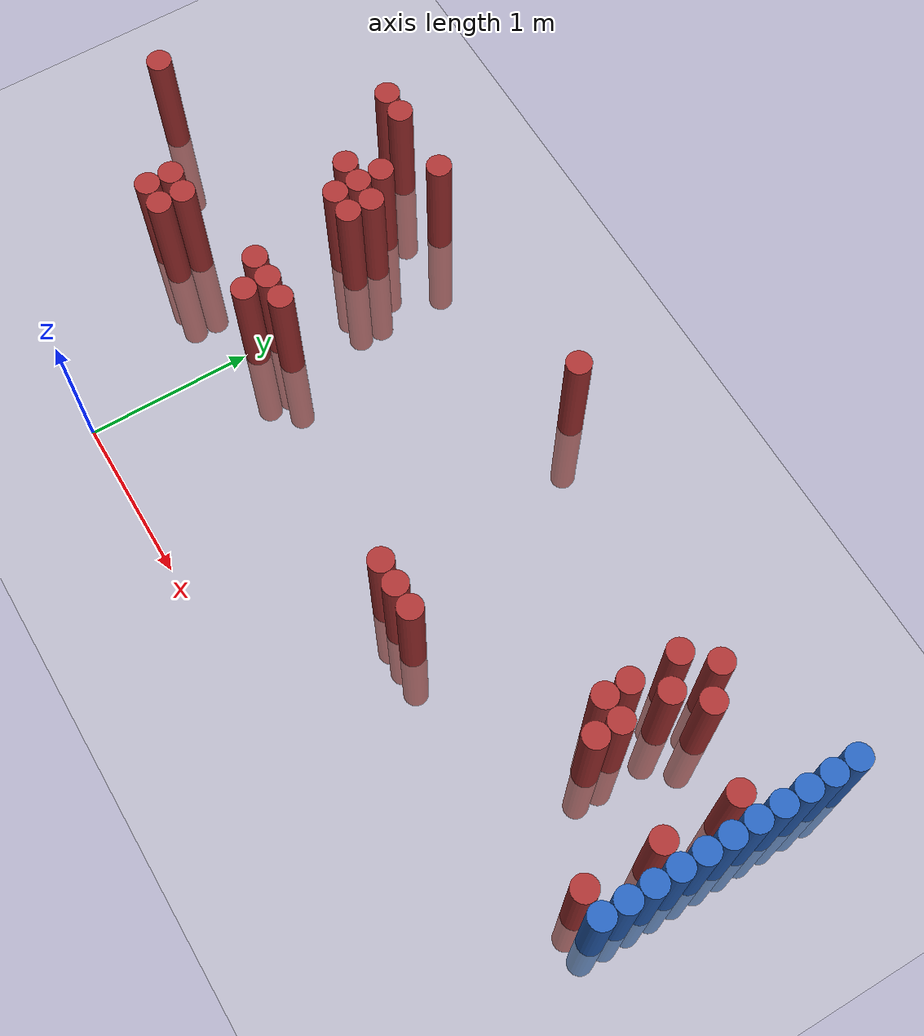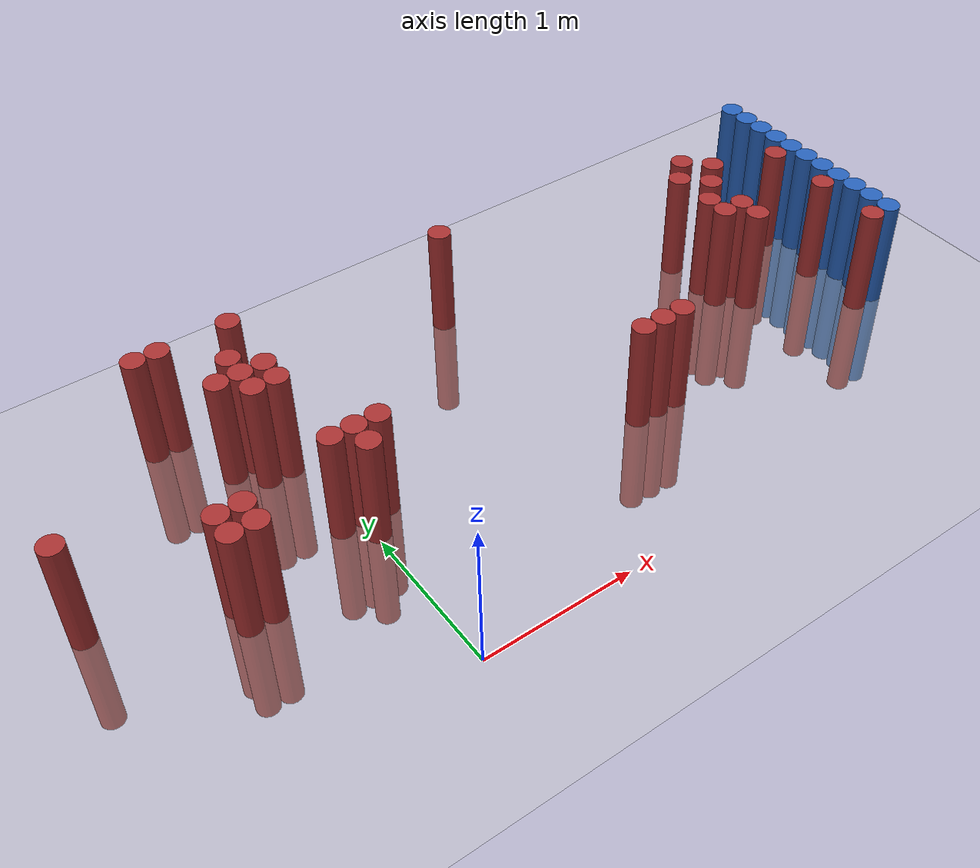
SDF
<sdf version="1.6">
 <world name="default">
  <model name="ground_plane">
   <static>1</static>
   <link name="link">
    <collision name="collision">
     <geometry><plane><normal>0 0 1</normal><size>100 100</size></plane></geometry>
     <surface><friction><ode><mu>100</mu><mu2>50</mu2></ode></friction></surface>
    </collision>
    <visual name="visual">
     <cast_shadows>0</cast_shadows>
     <geometry><plane><normal>0 0 1</normal><size>100 100</size></plane></geometry>
     <material>
      <script><uri>file://media/materials/scripts/gazebo.material</uri><name>Gazebo/Grey</name></script>
     </material>
    </visual>
   </link>
  </model>
  <model name="unit_cylinder_128">
   <static>1</static>
   <pose>3.925000 1.075000 0.000000 0.000000 0.000000 0.000000</pose>
   <link name="link">
    <inertial>
     <mass>1</mass>
     <inertia><ixx>0.145833</ixx><ixy>0</ixy><ixz>0</ixz><iyy>0.145833</iyy><iyz>0</iyz><izz>0.125</izz></inertia>
    </inertial>
    <collision name="collision">
     <geometry><cylinder><radius>0.075000</radius><length>1.5</length></cylinder></geometry>
    </collision>
    <visual name="visual">
     <geometry><cylinder><radius>0.075000</radius><length>1.5</length></cylinder></geometry>
     <material>
      <ambient>0.152000 0.379000 0.720000 1</ambient>
      <diffuse>0.152000 0.379000 0.720000 1</diffuse>
     </material>
     <material>
      <script><name>Gazebo/Grey</name><uri>file://media/materials/scripts/gazebo.material</uri></script>
     </material>
    </visual>
   </link>
  </model>
  <model name="unit_cylinder_130">
   <static>1</static>
   <pose>3.925000 1.225000 0.000000 0.000000 0.000000 0.000000</pose>
   <link name="link">
    <inertial>
     <mass>1</mass>
     <inertia><ixx>0.145833</ixx><ixy>0</ixy><ixz>0</ixz><iyy>0.145833</iyy><iyz>0</iyz><izz>0.125</izz></inertia>
    </inertial>
    <collision name="collision">
     <geometry><cylinder><radius>0.075000</radius><length>1.5</length></cylinder></geometry>
    </collision>
    <visual name="visual">
     <geometry><cylinder><radius>0.075000</radius><length>1.5</length></cylinder></geometry>
     <material>
      <ambient>0.152000 0.379000 0.720000 1</ambient>
      <diffuse>0.152000 0.379000 0.720000 1</diffuse>
     </material>
     <material>
      <script><name>Gazebo/Grey</name><uri>file://media/materials/scripts/gazebo.material</uri></script>
     </material>
    </visual>
   </link>
  </model>
  <model name="unit_cylinder_132">
   <static>1</static>
   <pose>3.925000 1.375000 0.000000 0.000000 0.000000 0.000000</pose>
   <link name="link">
    <inertial>
     <mass>1</mass>
     <inertia><ixx>0.145833</ixx><ixy>0</ixy><ixz>0</ixz><iyy>0.145833</iyy><iyz>0</iyz><izz>0.125</izz></inertia>
    </inertial>
    <collision name="collision">
     <geometry><cylinder><radius>0.075000</radius><length>1.5</length></cylinder></geometry>
    </collision>
    <visual name="visual">
     <geometry><cylinder><radius>0.075000</radius><length>1.5</length></cylinder></geometry>
     <material>
      <ambient>0.152000 0.379000 0.720000 1</ambient>
      <diffuse>0.152000 0.379000 0.720000 1</diffuse>
     </material>
     <material>
      <script><name>Gazebo/Grey</name><uri>file://media/materials/scripts/gazebo.material</uri></script>
     </material>
    </visual>
   </link>
  </model>
  <model name="unit_cylinder_134">
   <static>1</static>
   <pose>3.925000 1.525000 0.000000 0.000000 0.000000 0.000000</pose>
   <link name="link">
    <inertial>
     <mass>1</mass>
     <inertia><ixx>0.145833</ixx><ixy>0</ixy><ixz>0</ixz><iyy>0.145833</iyy><iyz>0</iyz><izz>0.125</izz></inertia>
    </inertial>
    <collision name="collision">
     <geometry><cylinder><radius>0.075000</radius><length>1.5</length></cylinder></geometry>
    </collision>
    <visual name="visual">
     <geometry><cylinder><radius>0.075000</radius><length>1.5</length></cylinder></geometry>
     <material>
      <ambient>0.152000 0.379000 0.720000 1</ambient>
      <diffuse>0.152000 0.379000 0.720000 1</diffuse>
     </material>
     <material>
      <script><name>Gazebo/Grey</name><uri>file://media/materials/scripts/gazebo.material</uri></script>
     </material>
    </visual>
   </link>
  </model>
  <model name="unit_cylinder_136">
   <static>1</static>
   <pose>3.925000 1.675000 0.000000 0.000000 0.000000 0.000000</pose>
   <link name="link">
    <inertial>
     <mass>1</mass>
     <inertia><ixx>0.145833</ixx><ixy>0</ixy><ixz>0</ixz><iyy>0.145833</iyy><iyz>0</iyz><izz>0.125</izz></inertia>
    </inertial>
    <collision name="collision">
     <geometry><cylinder><radius>0.075000</radius><length>1.5</length></cylinder></geometry>
    </collision>
    <visual name="visual">
     <geometry><cylinder><radius>0.075000</radius><length>1.5</length></cylinder></geometry>
     <material>
      <ambient>0.152000 0.379000 0.720000 1</ambient>
      <diffuse>0.152000 0.379000 0.720000 1</diffuse>
     </material>
     <material>
      <script><name>Gazebo/Grey</name><uri>file://media/materials/scripts/gazebo.material</uri></script>
     </material>
    </visual>
   </link>
  </model>
  <model name="unit_cylinder_138">
   <static>1</static>
   <pose>3.925000 1.825000 0.000000 0.000000 0.000000 0.000000</pose>
   <link name="link">
    <inertial>
     <mass>1</mass>
     <inertia><ixx>0.145833</ixx><ixy>0</ixy><ixz>0</ixz><iyy>0.145833</iyy><iyz>0</iyz><izz>0.125</izz></inertia>
    </inertial>
    <collision name="collision">
     <geometry><cylinder><radius>0.075000</radius><length>1.5</length></cylinder></geometry>
    </collision>
    <visual name="visual">
     <geometry><cylinder><radius>0.075000</radius><length>1.5</length></cylinder></geometry>
     <material>
      <ambient>0.152000 0.379000 0.720000 1</ambient>
      <diffuse>0.152000 0.379000 0.720000 1</diffuse>
     </material>
     <material>
      <script><name>Gazebo/Grey</name><uri>file://media/materials/scripts/gazebo.material</uri></script>
     </material>
    </visual>
   </link>
  </model>
  <model name="unit_cylinder_140">
   <static>1</static>
   <pose>3.925000 1.975000 0.000000 0.000000 0.000000 0.000000</pose>
   <link name="link">
    <inertial>
     <mass>1</mass>
     <inertia><ixx>0.145833</ixx><ixy>0</ixy><ixz>0</ixz><iyy>0.145833</iyy><iyz>0</iyz><izz>0.125</izz></inertia>
    </inertial>
    <collision name="collision">
     <geometry><cylinder><radius>0.075000</radius><length>1.5</length></cylinder></geometry>
    </collision>
    <visual name="visual">
     <geometry><cylinder><radius>0.075000</radius><length>1.5</length></cylinder></geometry>
     <material>
      <ambient>0.152000 0.379000 0.720000 1</ambient>
      <diffuse>0.152000 0.379000 0.720000 1</diffuse>
     </material>
     <material>
      <script><name>Gazebo/Grey</name><uri>file://media/materials/scripts/gazebo.material</uri></script>
     </material>
    </visual>
   </link>
  </model>
  <model name="unit_cylinder_142">
   <static>1</static>
   <pose>3.925000 2.125000 0.000000 0.000000 0.000000 0.000000</pose>
   <link name="link">
    <inertial>
     <mass>1</mass>
     <inertia><ixx>0.145833</ixx><ixy>0</ixy><ixz>0</ixz><iyy>0.145833</iyy><iyz>0</iyz><izz>0.125</izz></inertia>
    </inertial>
    <collision name="collision">
     <geometry><cylinder><radius>0.075000</radius><length>1.5</length></cylinder></geometry>
    </collision>
    <visual name="visual">
     <geometry><cylinder><radius>0.075000</radius><length>1.5</length></cylinder></geometry>
     <material>
      <ambient>0.152000 0.379000 0.720000 1</ambient>
      <diffuse>0.152000 0.379000 0.720000 1</diffuse>
     </material>
     <material>
      <script><name>Gazebo/Grey</name><uri>file://media/materials/scripts/gazebo.material</uri></script>
     </material>
    </visual>
   </link>
  </model>
  <model name="unit_cylinder_144">
   <static>1</static>
   <pose>3.925000 2.275000 0.000000 0.000000 0.000000 0.000000</pose>
   <link name="link">
    <inertial>
     <mass>1</mass>
     <inertia><ixx>0.145833</ixx><ixy>0</ixy><ixz>0</ixz><iyy>0.145833</iyy><iyz>0</iyz><izz>0.125</izz></inertia>
    </inertial>
    <collision name="collision">
     <geometry><cylinder><radius>0.075000</radius><length>1.5</length></cylinder></geometry>
    </collision>
    <visual name="visual">
     <geometry><cylinder><radius>0.075000</radius><length>1.5</length></cylinder></geometry>
     <material>
      <ambient>0.152000 0.379000 0.720000 1</ambient>
      <diffuse>0.152000 0.379000 0.720000 1</diffuse>
     </material>
     <material>
      <script><name>Gazebo/Grey</name><uri>file://media/materials/scripts/gazebo.material</uri></script>
     </material>
    </visual>
   </link>
  </model>
  <model name="unit_cylinder_146">
   <static>1</static>
   <pose>3.925000 2.425000 0.000000 0.000000 0.000000 0.000000</pose>
   <link name="link">
    <inertial>
     <mass>1</mass>
     <inertia><ixx>0.145833</ixx><ixy>0</ixy><ixz>0</ixz><iyy>0.145833</iyy><iyz>0</iyz><izz>0.125</izz></inertia>
    </inertial>
    <collision name="collision">
     <geometry><cylinder><radius>0.075000</radius><length>1.5</length></cylinder></geometry>
    </collision>
    <visual name="visual">
     <geometry><cylinder><radius>0.075000</radius><length>1.5</length></cylinder></geometry>
     <material>
      <ambient>0.152000 0.379000 0.720000 1</ambient>
      <diffuse>0.152000 0.379000 0.720000 1</diffuse>
     </material>
     <material>
      <script><name>Gazebo/Grey</name><uri>file://media/materials/scripts/gazebo.material</uri></script>
     </material>
    </visual>
   </link>
  </model>
  <model name="unit_cylinder_337">
   <static>1</static>
   <pose>-1.625000 1.375000 0.000000 0.000000 0.000000 0.000000</pose>
   <link name="link">
    <inertial>
     <mass>1</mass>
     <inertia><ixx>0.145833</ixx><ixy>0</ixy><ixz>0</ixz><iyy>0.145833</iyy><iyz>0</iyz><izz>0.125</izz></inertia>
    </inertial>
    <collision name="collision">
     <geometry><cylinder><radius>0.075000</radius><length>1.5</length></cylinder></geometry>
    </collision>
    <visual name="visual">
     <geometry><cylinder><radius>0.075000</radius><length>1.5</length></cylinder></geometry>
     <material>
      <ambient>0.648000 0.192000 0.192000 1</ambient>
      <diffuse>0.648000 0.192000 0.192000 1</diffuse>
     </material>
     <material>
      <script><name>Gazebo/Grey</name><uri>file://media/materials/scripts/gazebo.material</uri></script>
     </material>
    </visual>
   </link>
  </model>
  <model name="unit_cylinder_364">
   <static>1</static>
   <pose>-0.875000 0.925000 0.000000 0.000000 0.000000 0.000000</pose>
   <link name="link">
    <inertial>
     <mass>1</mass>
     <inertia><ixx>0.145833</ixx><ixy>0</ixy><ixz>0</ixz><iyy>0.145833</iyy><iyz>0</iyz><izz>0.125</izz></inertia>
    </inertial>
    <collision name="collision">
     <geometry><cylinder><radius>0.075000</radius><length>1.5</length></cylinder></geometry>
    </collision>
    <visual name="visual">
     <geometry><cylinder><radius>0.075000</radius><length>1.5</length></cylinder></geometry>
     <material>
      <ambient>0.648000 0.192000 0.192000 1</ambient>
      <diffuse>0.648000 0.192000 0.192000 1</diffuse>
     </material>
     <material>
      <script><name>Gazebo/Grey</name><uri>file://media/materials/scripts/gazebo.material</uri></script>
     </material>
    </visual>
   </link>
  </model>
  <model name="unit_cylinder_365">
   <static>1</static>
   <pose>-0.875000 1.075000 0.000000 0.000000 0.000000 0.000000</pose>
   <link name="link">
    <inertial>
     <mass>1</mass>
     <inertia><ixx>0.145833</ixx><ixy>0</ixy><ixz>0</ixz><iyy>0.145833</iyy><iyz>0</iyz><izz>0.125</izz></inertia>
    </inertial>
    <collision name="collision">
     <geometry><cylinder><radius>0.075000</radius><length>1.5</length></cylinder></geometry>
    </collision>
    <visual name="visual">
     <geometry><cylinder><radius>0.075000</radius><length>1.5</length></cylinder></geometry>
     <material>
      <ambient>0.648000 0.192000 0.192000 1</ambient>
      <diffuse>0.648000 0.192000 0.192000 1</diffuse>
     </material>
     <material>
      <script><name>Gazebo/Grey</name><uri>file://media/materials/scripts/gazebo.material</uri></script>
     </material>
    </visual>
   </link>
  </model>
  <model name="unit_cylinder_367">
   <static>1</static>
   <pose>-0.725000 0.925000 0.000000 0.000000 0.000000 0.000000</pose>
   <link name="link">
    <inertial>
     <mass>1</mass>
     <inertia><ixx>0.145833</ixx><ixy>0</ixy><ixz>0</ixz><iyy>0.145833</iyy><iyz>0</iyz><izz>0.125</izz></inertia>
    </inertial>
    <collision name="collision">
     <geometry><cylinder><radius>0.075000</radius><length>1.5</length></cylinder></geometry>
    </collision>
    <visual name="visual">
     <geometry><cylinder><radius>0.075000</radius><length>1.5</length></cylinder></geometry>
     <material>
      <ambient>0.648000 0.192000 0.192000 1</ambient>
      <diffuse>0.648000 0.192000 0.192000 1</diffuse>
     </material>
     <material>
      <script><name>Gazebo/Grey</name><uri>file://media/materials/scripts/gazebo.material</uri></script>
     </material>
    </visual>
   </link>
  </model>
  <model name="unit_cylinder_368">
   <static>1</static>
   <pose>-0.725000 1.075000 0.000000 0.000000 0.000000 0.000000</pose>
   <link name="link">
    <inertial>
     <mass>1</mass>
     <inertia><ixx>0.145833</ixx><ixy>0</ixy><ixz>0</ixz><iyy>0.145833</iyy><iyz>0</iyz><izz>0.125</izz></inertia>
    </inertial>
    <collision name="collision">
     <geometry><cylinder><radius>0.075000</radius><length>1.5</length></cylinder></geometry>
    </collision>
    <visual name="visual">
     <geometry><cylinder><radius>0.075000</radius><length>1.5</length></cylinder></geometry>
     <material>
      <ambient>0.648000 0.192000 0.192000 1</ambient>
      <diffuse>0.648000 0.192000 0.192000 1</diffuse>
     </material>
     <material>
      <script><name>Gazebo/Grey</name><uri>file://media/materials/scripts/gazebo.material</uri></script>
     </material>
    </visual>
   </link>
  </model>
  <model name="unit_cylinder_369">
   <static>1</static>
   <pose>-0.725000 2.425000 0.000000 0.000000 0.000000 0.000000</pose>
   <link name="link">
    <inertial>
     <mass>1</mass>
     <inertia><ixx>0.145833</ixx><ixy>0</ixy><ixz>0</ixz><iyy>0.145833</iyy><iyz>0</iyz><izz>0.125</izz></inertia>
    </inertial>
    <collision name="collision">
     <geometry><cylinder><radius>0.075000</radius><length>1.5</length></cylinder></geometry>
    </collision>
    <visual name="visual">
     <geometry><cylinder><radius>0.075000</radius><length>1.5</length></cylinder></geometry>
     <material>
      <ambient>0.648000 0.192000 0.192000 1</ambient>
      <diffuse>0.648000 0.192000 0.192000 1</diffuse>
     </material>
     <material>
      <script><name>Gazebo/Grey</name><uri>file://media/materials/scripts/gazebo.material</uri></script>
     </material>
    </visual>
   </link>
  </model>
  <model name="unit_cylinder_373">
   <static>1</static>
   <pose>-0.575000 2.425000 0.000000 0.000000 0.000000 0.000000</pose>
   <link name="link">
    <inertial>
     <mass>1</mass>
     <inertia><ixx>0.145833</ixx><ixy>0</ixy><ixz>0</ixz><iyy>0.145833</iyy><iyz>0</iyz><izz>0.125</izz></inertia>
    </inertial>
    <collision name="collision">
     <geometry><cylinder><radius>0.075000</radius><length>1.5</length></cylinder></geometry>
    </collision>
    <visual name="visual">
     <geometry><cylinder><radius>0.075000</radius><length>1.5</length></cylinder></geometry>
     <material>
      <ambient>0.648000 0.192000 0.192000 1</ambient>
      <diffuse>0.648000 0.192000 0.192000 1</diffuse>
     </material>
     <material>
      <script><name>Gazebo/Grey</name><uri>file://media/materials/scripts/gazebo.material</uri></script>
     </material>
    </visual>
   </link>
  </model>
  <model name="unit_cylinder_375">
   <static>1</static>
   <pose>-0.425000 1.975000 0.000000 0.000000 0.000000 0.000000</pose>
   <link name="link">
    <inertial>
     <mass>1</mass>
     <inertia><ixx>0.145833</ixx><ixy>0</ixy><ixz>0</ixz><iyy>0.145833</iyy><iyz>0</iyz><izz>0.125</izz></inertia>
    </inertial>
    <collision name="collision">
     <geometry><cylinder><radius>0.075000</radius><length>1.5</length></cylinder></geometry>
    </collision>
    <visual name="visual">
     <geometry><cylinder><radius>0.075000</radius><length>1.5</length></cylinder></geometry>
     <material>
      <ambient>0.648000 0.192000 0.192000 1</ambient>
      <diffuse>0.648000 0.192000 0.192000 1</diffuse>
     </material>
     <material>
      <script><name>Gazebo/Grey</name><uri>file://media/materials/scripts/gazebo.material</uri></script>
     </material>
    </visual>
   </link>
  </model>
  <model name="unit_cylinder_378">
   <static>1</static>
   <pose>-0.275000 1.825000 0.000000 0.000000 0.000000 0.000000</pose>
   <link name="link">
    <inertial>
     <mass>1</mass>
     <inertia><ixx>0.145833</ixx><ixy>0</ixy><ixz>0</ixz><iyy>0.145833</iyy><iyz>0</iyz><izz>0.125</izz></inertia>
    </inertial>
    <collision name="collision">
     <geometry><cylinder><radius>0.075000</radius><length>1.5</length></cylinder></geometry>
    </collision>
    <visual name="visual">
     <geometry><cylinder><radius>0.075000</radius><length>1.5</length></cylinder></geometry>
     <material>
      <ambient>0.648000 0.192000 0.192000 1</ambient>
      <diffuse>0.648000 0.192000 0.192000 1</diffuse>
     </material>
     <material>
      <script><name>Gazebo/Grey</name><uri>file://media/materials/scripts/gazebo.material</uri></script>
     </material>
    </visual>
   </link>
  </model>
  <model name="unit_cylinder_379">
   <static>1</static>
   <pose>-0.275000 1.975000 0.000000 0.000000 0.000000 0.000000</pose>
   <link name="link">
    <inertial>
     <mass>1</mass>
     <inertia><ixx>0.145833</ixx><ixy>0</ixy><ixz>0</ixz><iyy>0.145833</iyy><iyz>0</iyz><izz>0.125</izz></inertia>
    </inertial>
    <collision name="collision">
     <geometry><cylinder><radius>0.075000</radius><length>1.5</length></cylinder></geometry>
    </collision>
    <visual name="visual">
     <geometry><cylinder><radius>0.075000</radius><length>1.5</length></cylinder></geometry>
     <material>
      <ambient>0.648000 0.192000 0.192000 1</ambient>
      <diffuse>0.648000 0.192000 0.192000 1</diffuse>
     </material>
     <material>
      <script><name>Gazebo/Grey</name><uri>file://media/materials/scripts/gazebo.material</uri></script>
     </material>
    </visual>
   </link>
  </model>
  <model name="unit_cylinder_380">
   <static>1</static>
   <pose>-0.275000 2.125000 0.000000 0.000000 0.000000 0.000000</pose>
   <link name="link">
    <inertial>
     <mass>1</mass>
     <inertia><ixx>0.145833</ixx><ixy>0</ixy><ixz>0</ixz><iyy>0.145833</iyy><iyz>0</iyz><izz>0.125</izz></inertia>
    </inertial>
    <collision name="collision">
     <geometry><cylinder><radius>0.075000</radius><length>1.5</length></cylinder></geometry>
    </collision>
    <visual name="visual">
     <geometry><cylinder><radius>0.075000</radius><length>1.5</length></cylinder></geometry>
     <material>
      <ambient>0.648000 0.192000 0.192000 1</ambient>
      <diffuse>0.648000 0.192000 0.192000 1</diffuse>
     </material>
     <material>
      <script><name>Gazebo/Grey</name><uri>file://media/materials/scripts/gazebo.material</uri></script>
     </material>
    </visual>
   </link>
  </model>
  <model name="unit_cylinder_382">
   <static>1</static>
   <pose>-0.125000 1.225000 0.000000 0.000000 0.000000 0.000000</pose>
   <link name="link">
    <inertial>
     <mass>1</mass>
     <inertia><ixx>0.145833</ixx><ixy>0</ixy><ixz>0</ixz><iyy>0.145833</iyy><iyz>0</iyz><izz>0.125</izz></inertia>
    </inertial>
    <collision name="collision">
     <geometry><cylinder><radius>0.075000</radius><length>1.5</length></cylinder></geometry>
    </collision>
    <visual name="visual">
     <geometry><cylinder><radius>0.075000</radius><length>1.5</length></cylinder></geometry>
     <material>
      <ambient>0.648000 0.192000 0.192000 1</ambient>
      <diffuse>0.648000 0.192000 0.192000 1</diffuse>
     </material>
     <material>
      <script><name>Gazebo/Grey</name><uri>file://media/materials/scripts/gazebo.material</uri></script>
     </material>
    </visual>
   </link>
  </model>
  <model name="unit_cylinder_383">
   <static>1</static>
   <pose>-0.125000 1.825000 0.000000 0.000000 0.000000 0.000000</pose>
   <link name="link">
    <inertial>
     <mass>1</mass>
     <inertia><ixx>0.145833</ixx><ixy>0</ixy><ixz>0</ixz><iyy>0.145833</iyy><iyz>0</iyz><izz>0.125</izz></inertia>
    </inertial>
    <collision name="collision">
     <geometry><cylinder><radius>0.075000</radius><length>1.5</length></cylinder></geometry>
    </collision>
    <visual name="visual">
     <geometry><cylinder><radius>0.075000</radius><length>1.5</length></cylinder></geometry>
     <material>
      <ambient>0.648000 0.192000 0.192000 1</ambient>
      <diffuse>0.648000 0.192000 0.192000 1</diffuse>
     </material>
     <material>
      <script><name>Gazebo/Grey</name><uri>file://media/materials/scripts/gazebo.material</uri></script>
     </material>
    </visual>
   </link>
  </model>
  <model name="unit_cylinder_384">
   <static>1</static>
   <pose>-0.125000 1.975000 0.000000 0.000000 0.000000 0.000000</pose>
   <link name="link">
    <inertial>
     <mass>1</mass>
     <inertia><ixx>0.145833</ixx><ixy>0</ixy><ixz>0</ixz><iyy>0.145833</iyy><iyz>0</iyz><izz>0.125</izz></inertia>
    </inertial>
    <collision name="collision">
     <geometry><cylinder><radius>0.075000</radius><length>1.5</length></cylinder></geometry>
    </collision>
    <visual name="visual">
     <geometry><cylinder><radius>0.075000</radius><length>1.5</length></cylinder></geometry>
     <material>
      <ambient>0.648000 0.192000 0.192000 1</ambient>
      <diffuse>0.648000 0.192000 0.192000 1</diffuse>
     </material>
     <material>
      <script><name>Gazebo/Grey</name><uri>file://media/materials/scripts/gazebo.material</uri></script>
     </material>
    </visual>
   </link>
  </model>
  <model name="unit_cylinder_385">
   <static>1</static>
   <pose>-0.125000 2.425000 0.000000 0.000000 0.000000 0.000000</pose>
   <link name="link">
    <inertial>
     <mass>1</mass>
     <inertia><ixx>0.145833</ixx><ixy>0</ixy><ixz>0</ixz><iyy>0.145833</iyy><iyz>0</iyz><izz>0.125</izz></inertia>
    </inertial>
    <collision name="collision">
     <geometry><cylinder><radius>0.075000</radius><length>1.5</length></cylinder></geometry>
    </collision>
    <visual name="visual">
     <geometry><cylinder><radius>0.075000</radius><length>1.5</length></cylinder></geometry>
     <material>
      <ambient>0.648000 0.192000 0.192000 1</ambient>
      <diffuse>0.648000 0.192000 0.192000 1</diffuse>
     </material>
     <material>
      <script><name>Gazebo/Grey</name><uri>file://media/materials/scripts/gazebo.material</uri></script>
     </material>
    </visual>
   </link>
  </model>
  <model name="unit_cylinder_387">
   <static>1</static>
   <pose>0.025000 1.075000 0.000000 0.000000 0.000000 0.000000</pose>
   <link name="link">
    <inertial>
     <mass>1</mass>
     <inertia><ixx>0.145833</ixx><ixy>0</ixy><ixz>0</ixz><iyy>0.145833</iyy><iyz>0</iyz><izz>0.125</izz></inertia>
    </inertial>
    <collision name="collision">
     <geometry><cylinder><radius>0.075000</radius><length>1.5</length></cylinder></geometry>
    </collision>
    <visual name="visual">
     <geometry><cylinder><radius>0.075000</radius><length>1.5</length></cylinder></geometry>
     <material>
      <ambient>0.648000 0.192000 0.192000 1</ambient>
      <diffuse>0.648000 0.192000 0.192000 1</diffuse>
     </material>
     <material>
      <script><name>Gazebo/Grey</name><uri>file://media/materials/scripts/gazebo.material</uri></script>
     </material>
    </visual>
   </link>
  </model>
  <model name="unit_cylinder_388">
   <static>1</static>
   <pose>0.025000 1.225000 0.000000 0.000000 0.000000 0.000000</pose>
   <link name="link">
    <inertial>
     <mass>1</mass>
     <inertia><ixx>0.145833</ixx><ixy>0</ixy><ixz>0</ixz><iyy>0.145833</iyy><iyz>0</iyz><izz>0.125</izz></inertia>
    </inertial>
    <collision name="collision">
     <geometry><cylinder><radius>0.075000</radius><length>1.5</length></cylinder></geometry>
    </collision>
    <visual name="visual">
     <geometry><cylinder><radius>0.075000</radius><length>1.5</length></cylinder></geometry>
     <material>
      <ambient>0.648000 0.192000 0.192000 1</ambient>
      <diffuse>0.648000 0.192000 0.192000 1</diffuse>
     </material>
     <material>
      <script><name>Gazebo/Grey</name><uri>file://media/materials/scripts/gazebo.material</uri></script>
     </material>
    </visual>
   </link>
  </model>
  <model name="unit_cylinder_391">
   <static>1</static>
   <pose>0.175000 1.225000 0.000000 0.000000 0.000000 0.000000</pose>
   <link name="link">
    <inertial>
     <mass>1</mass>
     <inertia><ixx>0.145833</ixx><ixy>0</ixy><ixz>0</ixz><iyy>0.145833</iyy><iyz>0</iyz><izz>0.125</izz></inertia>
    </inertial>
    <collision name="collision">
     <geometry><cylinder><radius>0.075000</radius><length>1.5</length></cylinder></geometry>
    </collision>
    <visual name="visual">
     <geometry><cylinder><radius>0.075000</radius><length>1.5</length></cylinder></geometry>
     <material>
      <ambient>0.648000 0.192000 0.192000 1</ambient>
      <diffuse>0.648000 0.192000 0.192000 1</diffuse>
     </material>
     <material>
      <script><name>Gazebo/Grey</name><uri>file://media/materials/scripts/gazebo.material</uri></script>
     </material>
    </visual>
   </link>
  </model>
  <model name="unit_cylinder_399">
   <static>1</static>
   <pose>1.375000 2.425000 0.000000 0.000000 0.000000 0.000000</pose>
   <link name="link">
    <inertial>
     <mass>1</mass>
     <inertia><ixx>0.145833</ixx><ixy>0</ixy><ixz>0</ixz><iyy>0.145833</iyy><iyz>0</iyz><izz>0.125</izz></inertia>
    </inertial>
    <collision name="collision">
     <geometry><cylinder><radius>0.075000</radius><length>1.5</length></cylinder></geometry>
    </collision>
    <visual name="visual">
     <geometry><cylinder><radius>0.075000</radius><length>1.5</length></cylinder></geometry>
     <material>
      <ambient>0.648000 0.192000 0.192000 1</ambient>
      <diffuse>0.648000 0.192000 0.192000 1</diffuse>
     </material>
     <material>
      <script><name>Gazebo/Grey</name><uri>file://media/materials/scripts/gazebo.material</uri></script>
     </material>
    </visual>
   </link>
  </model>
  <model name="unit_cylinder_408">
   <static>1</static>
   <pose>1.825000 0.925000 0.000000 0.000000 0.000000 0.000000</pose>
   <link name="link">
    <inertial>
     <mass>1</mass>
     <inertia><ixx>0.145833</ixx><ixy>0</ixy><ixz>0</ixz><iyy>0.145833</iyy><iyz>0</iyz><izz>0.125</izz></inertia>
    </inertial>
    <collision name="collision">
     <geometry><cylinder><radius>0.075000</radius><length>1.5</length></cylinder></geometry>
    </collision>
    <visual name="visual">
     <geometry><cylinder><radius>0.075000</radius><length>1.5</length></cylinder></geometry>
     <material>
      <ambient>0.648000 0.192000 0.192000 1</ambient>
      <diffuse>0.648000 0.192000 0.192000 1</diffuse>
     </material>
     <material>
      <script><name>Gazebo/Grey</name><uri>file://media/materials/scripts/gazebo.material</uri></script>
     </material>
    </visual>
   </link>
  </model>
  <model name="unit_cylinder_411">
   <static>1</static>
   <pose>1.975000 0.925000 0.000000 0.000000 0.000000 0.000000</pose>
   <link name="link">
    <inertial>
     <mass>1</mass>
     <inertia><ixx>0.145833</ixx><ixy>0</ixy><ixz>0</ixz><iyy>0.145833</iyy><iyz>0</iyz><izz>0.125</izz></inertia>
    </inertial>
    <collision name="collision">
     <geometry><cylinder><radius>0.075000</radius><length>1.5</length></cylinder></geometry>
    </collision>
    <visual name="visual">
     <geometry><cylinder><radius>0.075000</radius><length>1.5</length></cylinder></geometry>
     <material>
      <ambient>0.648000 0.192000 0.192000 1</ambient>
      <diffuse>0.648000 0.192000 0.192000 1</diffuse>
     </material>
     <material>
      <script><name>Gazebo/Grey</name><uri>file://media/materials/scripts/gazebo.material</uri></script>
     </material>
    </visual>
   </link>
  </model>
  <model name="unit_cylinder_416">
   <static>1</static>
   <pose>2.125000 0.925000 0.000000 0.000000 0.000000 0.000000</pose>
   <link name="link">
    <inertial>
     <mass>1</mass>
     <inertia><ixx>0.145833</ixx><ixy>0</ixy><ixz>0</ixz><iyy>0.145833</iyy><iyz>0</iyz><izz>0.125</izz></inertia>
    </inertial>
    <collision name="collision">
     <geometry><cylinder><radius>0.075000</radius><length>1.5</length></cylinder></geometry>
    </collision>
    <visual name="visual">
     <geometry><cylinder><radius>0.075000</radius><length>1.5</length></cylinder></geometry>
     <material>
      <ambient>0.648000 0.192000 0.192000 1</ambient>
      <diffuse>0.648000 0.192000 0.192000 1</diffuse>
     </material>
     <material>
      <script><name>Gazebo/Grey</name><uri>file://media/materials/scripts/gazebo.material</uri></script>
     </material>
    </visual>
   </link>
  </model>
  <model name="unit_cylinder_432">
   <static>1</static>
   <pose>3.025000 1.525000 0.000000 0.000000 0.000000 0.000000</pose>
   <link name="link">
    <inertial>
     <mass>1</mass>
     <inertia><ixx>0.145833</ixx><ixy>0</ixy><ixz>0</ixz><iyy>0.145833</iyy><iyz>0</iyz><izz>0.125</izz></inertia>
    </inertial>
    <collision name="collision">
     <geometry><cylinder><radius>0.075000</radius><length>1.5</length></cylinder></geometry>
    </collision>
    <visual name="visual">
     <geometry><cylinder><radius>0.075000</radius><length>1.5</length></cylinder></geometry>
     <material>
      <ambient>0.648000 0.192000 0.192000 1</ambient>
      <diffuse>0.648000 0.192000 0.192000 1</diffuse>
     </material>
     <material>
      <script><name>Gazebo/Grey</name><uri>file://media/materials/scripts/gazebo.material</uri></script>
     </material>
    </visual>
   </link>
  </model>
  <model name="unit_cylinder_433">
   <static>1</static>
   <pose>3.025000 1.675000 0.000000 0.000000 0.000000 0.000000</pose>
   <link name="link">
    <inertial>
     <mass>1</mass>
     <inertia><ixx>0.145833</ixx><ixy>0</ixy><ixz>0</ixz><iyy>0.145833</iyy><iyz>0</iyz><izz>0.125</izz></inertia>
    </inertial>
    <collision name="collision">
     <geometry><cylinder><radius>0.075000</radius><length>1.5</length></cylinder></geometry>
    </collision>
    <visual name="visual">
     <geometry><cylinder><radius>0.075000</radius><length>1.5</length></cylinder></geometry>
     <material>
      <ambient>0.648000 0.192000 0.192000 1</ambient>
      <diffuse>0.648000 0.192000 0.192000 1</diffuse>
     </material>
     <material>
      <script><name>Gazebo/Grey</name><uri>file://media/materials/scripts/gazebo.material</uri></script>
     </material>
    </visual>
   </link>
  </model>
  <model name="unit_cylinder_434">
   <static>1</static>
   <pose>3.025000 1.975000 0.000000 0.000000 0.000000 0.000000</pose>
   <link name="link">
    <inertial>
     <mass>1</mass>
     <inertia><ixx>0.145833</ixx><ixy>0</ixy><ixz>0</ixz><iyy>0.145833</iyy><iyz>0</iyz><izz>0.125</izz></inertia>
    </inertial>
    <collision name="collision">
     <geometry><cylinder><radius>0.075000</radius><length>1.5</length></cylinder></geometry>
    </collision>
    <visual name="visual">
     <geometry><cylinder><radius>0.075000</radius><length>1.5</length></cylinder></geometry>
     <material>
      <ambient>0.648000 0.192000 0.192000 1</ambient>
      <diffuse>0.648000 0.192000 0.192000 1</diffuse>
     </material>
     <material>
      <script><name>Gazebo/Grey</name><uri>file://media/materials/scripts/gazebo.material</uri></script>
     </material>
    </visual>
   </link>
  </model>
  <model name="unit_cylinder_441">
   <static>1</static>
   <pose>3.175000 1.375000 0.000000 0.000000 0.000000 0.000000</pose>
   <link name="link">
    <inertial>
     <mass>1</mass>
     <inertia><ixx>0.145833</ixx><ixy>0</ixy><ixz>0</ixz><iyy>0.145833</iyy><iyz>0</iyz><izz>0.125</izz></inertia>
    </inertial>
    <collision name="collision">
     <geometry><cylinder><radius>0.075000</radius><length>1.5</length></cylinder></geometry>
    </collision>
    <visual name="visual">
     <geometry><cylinder><radius>0.075000</radius><length>1.5</length></cylinder></geometry>
     <material>
      <ambient>0.648000 0.192000 0.192000 1</ambient>
      <diffuse>0.648000 0.192000 0.192000 1</diffuse>
     </material>
     <material>
      <script><name>Gazebo/Grey</name><uri>file://media/materials/scripts/gazebo.material</uri></script>
     </material>
    </visual>
   </link>
  </model>
  <model name="unit_cylinder_442">
   <static>1</static>
   <pose>3.175000 1.525000 0.000000 0.000000 0.000000 0.000000</pose>
   <link name="link">
    <inertial>
     <mass>1</mass>
     <inertia><ixx>0.145833</ixx><ixy>0</ixy><ixz>0</ixz><iyy>0.145833</iyy><iyz>0</iyz><izz>0.125</izz></inertia>
    </inertial>
    <collision name="collision">
     <geometry><cylinder><radius>0.075000</radius><length>1.5</length></cylinder></geometry>
    </collision>
    <visual name="visual">
     <geometry><cylinder><radius>0.075000</radius><length>1.5</length></cylinder></geometry>
     <material>
      <ambient>0.648000 0.192000 0.192000 1</ambient>
      <diffuse>0.648000 0.192000 0.192000 1</diffuse>
     </material>
     <material>
      <script><name>Gazebo/Grey</name><uri>file://media/materials/scripts/gazebo.material</uri></script>
     </material>
    </visual>
   </link>
  </model>
  <model name="unit_cylinder_443">
   <static>1</static>
   <pose>3.175000 1.825000 0.000000 0.000000 0.000000 0.000000</pose>
   <link name="link">
    <inertial>
     <mass>1</mass>
     <inertia><ixx>0.145833</ixx><ixy>0</ixy><ixz>0</ixz><iyy>0.145833</iyy><iyz>0</iyz><izz>0.125</izz></inertia>
    </inertial>
    <collision name="collision">
     <geometry><cylinder><radius>0.075000</radius><length>1.5</length></cylinder></geometry>
    </collision>
    <visual name="visual">
     <geometry><cylinder><radius>0.075000</radius><length>1.5</length></cylinder></geometry>
     <material>
      <ambient>0.648000 0.192000 0.192000 1</ambient>
      <diffuse>0.648000 0.192000 0.192000 1</diffuse>
     </material>
     <material>
      <script><name>Gazebo/Grey</name><uri>file://media/materials/scripts/gazebo.material</uri></script>
     </material>
    </visual>
   </link>
  </model>
  <model name="unit_cylinder_444">
   <static>1</static>
   <pose>3.175000 2.125000 0.000000 0.000000 0.000000 0.000000</pose>
   <link name="link">
    <inertial>
     <mass>1</mass>
     <inertia><ixx>0.145833</ixx><ixy>0</ixy><ixz>0</ixz><iyy>0.145833</iyy><iyz>0</iyz><izz>0.125</izz></inertia>
    </inertial>
    <collision name="collision">
     <geometry><cylinder><radius>0.075000</radius><length>1.5</length></cylinder></geometry>
    </collision>
    <visual name="visual">
     <geometry><cylinder><radius>0.075000</radius><length>1.5</length></cylinder></geometry>
     <material>
      <ambient>0.648000 0.192000 0.192000 1</ambient>
      <diffuse>0.648000 0.192000 0.192000 1</diffuse>
     </material>
     <material>
      <script><name>Gazebo/Grey</name><uri>file://media/materials/scripts/gazebo.material</uri></script>
     </material>
    </visual>
   </link>
  </model>
  <model name="unit_cylinder_452">
   <static>1</static>
   <pose>3.325000 1.975000 0.000000 0.000000 0.000000 0.000000</pose>
   <link name="link">
    <inertial>
     <mass>1</mass>
     <inertia><ixx>0.145833</ixx><ixy>0</ixy><ixz>0</ixz><iyy>0.145833</iyy><iyz>0</iyz><izz>0.125</izz></inertia>
    </inertial>
    <collision name="collision">
     <geometry><cylinder><radius>0.075000</radius><length>1.5</length></cylinder></geometry>
    </collision>
    <visual name="visual">
     <geometry><cylinder><radius>0.075000</radius><length>1.5</length></cylinder></geometry>
     <material>
      <ambient>0.648000 0.192000 0.192000 1</ambient>
      <diffuse>0.648000 0.192000 0.192000 1</diffuse>
     </material>
     <material>
      <script><name>Gazebo/Grey</name><uri>file://media/materials/scripts/gazebo.material</uri></script>
     </material>
    </visual>
   </link>
  </model>
  <model name="unit_cylinder_478">
   <static>1</static>
   <pose>3.775000 0.925000 0.000000 0.000000 0.000000 0.000000</pose>
   <link name="link">
    <inertial>
     <mass>1</mass>
     <inertia><ixx>0.145833</ixx><ixy>0</ixy><ixz>0</ixz><iyy>0.145833</iyy><iyz>0</iyz><izz>0.125</izz></inertia>
    </inertial>
    <collision name="collision">
     <geometry><cylinder><radius>0.075000</radius><length>1.5</length></cylinder></geometry>
    </collision>
    <visual name="visual">
     <geometry><cylinder><radius>0.075000</radius><length>1.5</length></cylinder></geometry>
     <material>
      <ambient>0.648000 0.192000 0.192000 1</ambient>
      <diffuse>0.648000 0.192000 0.192000 1</diffuse>
     </material>
     <material>
      <script><name>Gazebo/Grey</name><uri>file://media/materials/scripts/gazebo.material</uri></script>
     </material>
    </visual>
   </link>
  </model>
  <model name="unit_cylinder_479">
   <static>1</static>
   <pose>3.775000 1.375000 0.000000 0.000000 0.000000 0.000000</pose>
   <link name="link">
    <inertial>
     <mass>1</mass>
     <inertia><ixx>0.145833</ixx><ixy>0</ixy><ixz>0</ixz><iyy>0.145833</iyy><iyz>0</iyz><izz>0.125</izz></inertia>
    </inertial>
    <collision name="collision">
     <geometry><cylinder><radius>0.075000</radius><length>1.5</length></cylinder></geometry>
    </collision>
    <visual name="visual">
     <geometry><cylinder><radius>0.075000</radius><length>1.5</length></cylinder></geometry>
     <material>
      <ambient>0.648000 0.192000 0.192000 1</ambient>
      <diffuse>0.648000 0.192000 0.192000 1</diffuse>
     </material>
     <material>
      <script><name>Gazebo/Grey</name><uri>file://media/materials/scripts/gazebo.material</uri></script>
     </material>
    </visual>
   </link>
  </model>
  <model name="unit_cylinder_480">
   <static>1</static>
   <pose>3.775000 1.825000 0.000000 0.000000 0.000000 0.000000</pose>
   <link name="link">
    <inertial>
     <mass>1</mass>
     <inertia><ixx>0.145833</ixx><ixy>0</ixy><ixz>0</ixz><iyy>0.145833</iyy><iyz>0</iyz><izz>0.125</izz></inertia>
    </inertial>
    <collision name="collision">
     <geometry><cylinder><radius>0.075000</radius><length>1.5</length></cylinder></geometry>
    </collision>
    <visual name="visual">
     <geometry><cylinder><radius>0.075000</radius><length>1.5</length></cylinder></geometry>
     <material>
      <ambient>0.648000 0.192000 0.192000 1</ambient>
      <diffuse>0.648000 0.192000 0.192000 1</diffuse>
     </material>
     <material>
      <script><name>Gazebo/Grey</name><uri>file://media/materials/scripts/gazebo.material</uri></script>
     </material>
    </visual>
   </link>
  </model>
  <model name="unit_cylinder_506">
   <static>1</static>
   <pose>3.925000 0.925000 0.000000 0.000000 0.000000 0.000000</pose>
   <link name="link">
    <inertial>
     <mass>1</mass>
     <inertia><ixx>0.145833</ixx><ixy>0</ixy><ixz>0</ixz><iyy>0.145833</iyy><iyz>0</iyz><izz>0.125</izz></inertia>
    </inertial>
    <collision name="collision">
     <geometry><cylinder><radius>0.075000</radius><length>1.5</length></cylinder></geometry>
    </collision>
    <visual name="visual">
     <geometry><cylinder><radius>0.075000</radius><length>1.5</length></cylinder></geometry>
     <material>
      <ambient>0.152000 0.379000 0.720000 1</ambient>
      <diffuse>0.152000 0.379000 0.720000 1</diffuse>
     </material>
     <material>
      <script><name>Gazebo/Grey</name><uri>file://media/materials/scripts/gazebo.material</uri></script>
     </material>
    </visual>
   </link>
  </model>
  <model name="unit_cylinder_507">
   <static>1</static>
   <pose>3.925000 1.075000 0.000000 0.000000 0.000000 0.000000</pose>
   <link name="link">
    <inertial>
     <mass>1</mass>
     <inertia><ixx>0.145833</ixx><ixy>0</ixy><ixz>0</ixz><iyy>0.145833</iyy><iyz>0</iyz><izz>0.125</izz></inertia>
    </inertial>
    <collision name="collision">
     <geometry><cylinder><radius>0.075000</radius><length>1.5</length></cylinder></geometry>
    </collision>
    <visual name="visual">
     <geometry><cylinder><radius>0.075000</radius><length>1.5</length></cylinder></geometry>
     <material>
      <ambient>0.152000 0.379000 0.720000 1</ambient>
      <diffuse>0.152000 0.379000 0.720000 1</diffuse>
     </material>
     <material>
      <script><name>Gazebo/Grey</name><uri>file://media/materials/scripts/gazebo.material</uri></script>
     </material>
    </visual>
   </link>
  </model>
  <model name="unit_cylinder_508">
   <static>1</static>
   <pose>3.925000 1.225000 0.000000 0.000000 0.000000 0.000000</pose>
   <link name="link">
    <inertial>
     <mass>1</mass>
     <inertia><ixx>0.145833</ixx><ixy>0</ixy><ixz>0</ixz><iyy>0.145833</iyy><iyz>0</iyz><izz>0.125</izz></inertia>
    </inertial>
    <collision name="collision">
     <geometry><cylinder><radius>0.075000</radius><length>1.5</length></cylinder></geometry>
    </collision>
    <visual name="visual">
     <geometry><cylinder><radius>0.075000</radius><length>1.5</length></cylinder></geometry>
     <material>
      <ambient>0.152000 0.379000 0.720000 1</ambient>
      <diffuse>0.152000 0.379000 0.720000 1</diffuse>
     </material>
     <material>
      <script><name>Gazebo/Grey</name><uri>file://media/materials/scripts/gazebo.material</uri></script>
     </material>
    </visual>
   </link>
  </model>
  <model name="unit_cylinder_509">
   <static>1</static>
   <pose>3.925000 1.375000 0.000000 0.000000 0.000000 0.000000</pose>
   <link name="link">
    <inertial>
     <mass>1</mass>
     <inertia><ixx>0.145833</ixx><ixy>0</ixy><ixz>0</ixz><iyy>0.145833</iyy><iyz>0</iyz><izz>0.125</izz></inertia>
    </inertial>
    <collision name="collision">
     <geometry><cylinder><radius>0.075000</radius><length>1.5</length></cylinder></geometry>
    </collision>
    <visual name="visual">
     <geometry><cylinder><radius>0.075000</radius><length>1.5</length></cylinder></geometry>
     <material>
      <ambient>0.152000 0.379000 0.720000 1</ambient>
      <diffuse>0.152000 0.379000 0.720000 1</diffuse>
     </material>
     <material>
      <script><name>Gazebo/Grey</name><uri>file://media/materials/scripts/gazebo.material</uri></script>
     </material>
    </visual>
   </link>
  </model>
  <model name="unit_cylinder_510">
   <static>1</static>
   <pose>3.925000 1.525000 0.000000 0.000000 0.000000 0.000000</pose>
   <link name="link">
    <inertial>
     <mass>1</mass>
     <inertia><ixx>0.145833</ixx><ixy>0</ixy><ixz>0</ixz><iyy>0.145833</iyy><iyz>0</iyz><izz>0.125</izz></inertia>
    </inertial>
    <collision name="collision">
     <geometry><cylinder><radius>0.075000</radius><length>1.5</length></cylinder></geometry>
    </collision>
    <visual name="visual">
     <geometry><cylinder><radius>0.075000</radius><length>1.5</length></cylinder></geometry>
     <material>
      <ambient>0.152000 0.379000 0.720000 1</ambient>
      <diffuse>0.152000 0.379000 0.720000 1</diffuse>
     </material>
     <material>
      <script><name>Gazebo/Grey</name><uri>file://media/materials/scripts/gazebo.material</uri></script>
     </material>
    </visual>
   </link>
  </model>
  <model name="unit_cylinder_511">
   <static>1</static>
   <pose>3.925000 1.675000 0.000000 0.000000 0.000000 0.000000</pose>
   <link name="link">
    <inertial>
     <mass>1</mass>
     <inertia><ixx>0.145833</ixx><ixy>0</ixy><ixz>0</ixz><iyy>0.145833</iyy><iyz>0</iyz><izz>0.125</izz></inertia>
    </inertial>
    <collision name="collision">
     <geometry><cylinder><radius>0.075000</radius><length>1.5</length></cylinder></geometry>
    </collision>
    <visual name="visual">
     <geometry><cylinder><radius>0.075000</radius><length>1.5</length></cylinder></geometry>
     <material>
      <ambient>0.152000 0.379000 0.720000 1</ambient>
      <diffuse>0.152000 0.379000 0.720000 1</diffuse>
     </material>
     <material>
      <script><name>Gazebo/Grey</name><uri>file://media/materials/scripts/gazebo.material</uri></script>
     </material>
    </visual>
   </link>
  </model>
  <model name="unit_cylinder_512">
   <static>1</static>
   <pose>3.925000 1.825000 0.000000 0.000000 0.000000 0.000000</pose>
   <link name="link">
    <inertial>
     <mass>1</mass>
     <inertia><ixx>0.145833</ixx><ixy>0</ixy><ixz>0</ixz><iyy>0.145833</iyy><iyz>0</iyz><izz>0.125</izz></inertia>
    </inertial>
    <collision name="collision">
     <geometry><cylinder><radius>0.075000</radius><length>1.5</length></cylinder></geometry>
    </collision>
    <visual name="visual">
     <geometry><cylinder><radius>0.075000</radius><length>1.5</length></cylinder></geometry>
     <material>
      <ambient>0.152000 0.379000 0.720000 1</ambient>
      <diffuse>0.152000 0.379000 0.720000 1</diffuse>
     </material>
     <material>
      <script><name>Gazebo/Grey</name><uri>file://media/materials/scripts/gazebo.material</uri></script>
     </material>
    </visual>
   </link>
  </model>
  <model name="unit_cylinder_513">
   <static>1</static>
   <pose>3.925000 1.975000 0.000000 0.000000 0.000000 0.000000</pose>
   <link name="link">
    <inertial>
     <mass>1</mass>
     <inertia><ixx>0.145833</ixx><ixy>0</ixy><ixz>0</ixz><iyy>0.145833</iyy><iyz>0</iyz><izz>0.125</izz></inertia>
    </inertial>
    <collision name="collision">
     <geometry><cylinder><radius>0.075000</radius><length>1.5</length></cylinder></geometry>
    </collision>
    <visual name="visual">
     <geometry><cylinder><radius>0.075000</radius><length>1.5</length></cylinder></geometry>
     <material>
      <ambient>0.152000 0.379000 0.720000 1</ambient>
      <diffuse>0.152000 0.379000 0.720000 1</diffuse>
     </material>
     <material>
      <script><name>Gazebo/Grey</name><uri>file://media/materials/scripts/gazebo.material</uri></script>
     </material>
    </visual>
   </link>
  </model>
  <model name="unit_cylinder_514">
   <static>1</static>
   <pose>3.925000 2.125000 0.000000 0.000000 0.000000 0.000000</pose>
   <link name="link">
    <inertial>
     <mass>1</mass>
     <inertia><ixx>0.145833</ixx><ixy>0</ixy><ixz>0</ixz><iyy>0.145833</iyy><iyz>0</iyz><izz>0.125</izz></inertia>
    </inertial>
    <collision name="collision">
     <geometry><cylinder><radius>0.075000</radius><length>1.5</length></cylinder></geometry>
    </collision>
    <visual name="visual">
     <geometry><cylinder><radius>0.075000</radius><length>1.5</length></cylinder></geometry>
     <material>
      <ambient>0.152000 0.379000 0.720000 1</ambient>
      <diffuse>0.152000 0.379000 0.720000 1</diffuse>
     </material>
     <material>
      <script><name>Gazebo/Grey</name><uri>file://media/materials/scripts/gazebo.material</uri></script>
     </material>
    </visual>
   </link>
  </model>
  <model name="unit_cylinder_515">
   <static>1</static>
   <pose>3.925000 2.275000 0.000000 0.000000 0.000000 0.000000</pose>
   <link name="link">
    <inertial>
     <mass>1</mass>
     <inertia><ixx>0.145833</ixx><ixy>0</ixy><ixz>0</ixz><iyy>0.145833</iyy><iyz>0</iyz><izz>0.125</izz></inertia>
    </inertial>
    <collision name="collision">
     <geometry><cylinder><radius>0.075000</radius><length>1.5</length></cylinder></geometry>
    </collision>
    <visual name="visual">
     <geometry><cylinder><radius>0.075000</radius><length>1.5</length></cylinder></geometry>
     <material>
      <ambient>0.152000 0.379000 0.720000 1</ambient>
      <diffuse>0.152000 0.379000 0.720000 1</diffuse>
     </material>
     <material>
      <script><name>Gazebo/Grey</name><uri>file://media/materials/scripts/gazebo.material</uri></script>
     </material>
    </visual>
   </link>
  </model>
  <model name="unit_cylinder_516">
   <static>1</static>
   <pose>3.925000 2.425000 0.000000 0.000000 0.000000 0.000000</pose>
   <link name="link">
    <inertial>
     <mass>1</mass>
     <inertia><ixx>0.145833</ixx><ixy>0</ixy><ixz>0</ixz><iyy>0.145833</iyy><iyz>0</iyz><izz>0.125</izz></inertia>
    </inertial>
    <collision name="collision">
     <geometry><cylinder><radius>0.075000</radius><length>1.5</length></cylinder></geometry>
    </collision>
    <visual name="visual">
     <geometry><cylinder><radius>0.075000</radius><length>1.5</length></cylinder></geometry>
     <material>
      <ambient>0.152000 0.379000 0.720000 1</ambient>
      <diffuse>0.152000 0.379000 0.720000 1</diffuse>
     </material>
     <material>
      <script><name>Gazebo/Grey</name><uri>file://media/materials/scripts/gazebo.material</uri></script>
     </material>
    </visual>
   </link>
  </model>
 </world>
</sdf>
